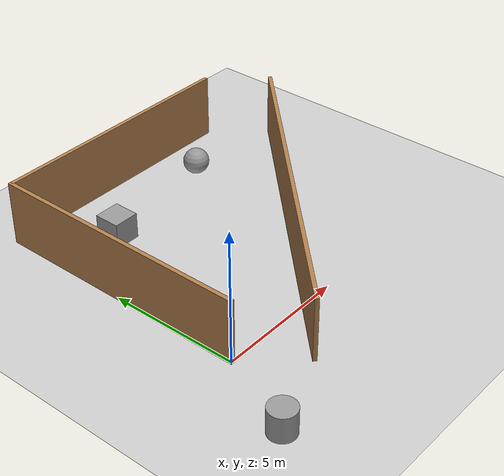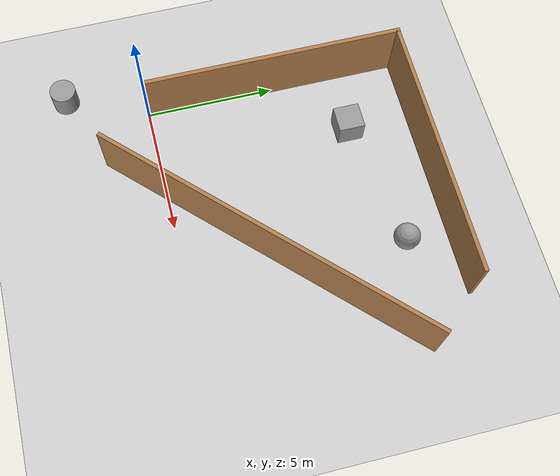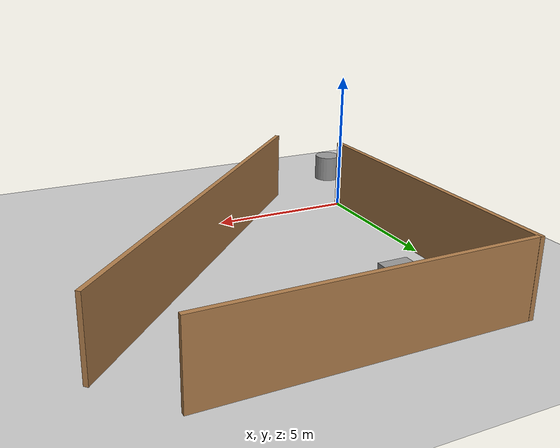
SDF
<sdf version="1.7">
 <world name="default">
  <light name="sun" type="directional">
   <pose>0 0 10 0 -0 0</pose>
   <diffuse>0.8 0.8 0.8 1</diffuse>
   <specular>0.2 0.2 0.2 1</specular>
   <attenuation>
    <range>1000</range>
    <constant>0.9</constant>
    <linear>0.01</linear>
    <quadratic>0.001</quadratic>
   </attenuation>
   <direction>-0.5 0.1 -0.9</direction>
   <spot><inner_angle>0</inner_angle><outer_angle>0</outer_angle><falloff>0</falloff></spot>
  </light>
  <model name="ground_plane">
   <static>1</static>
   <link name="link">
    <collision name="collision">
     <geometry><plane><normal>0 0 1</normal><size>100 100</size></plane></geometry>
     <surface>
      <contact><collide_bitmask>65535</collide_bitmask></contact>
      <friction><ode><mu>100</mu><mu2>50</mu2></ode></friction>
     </surface>
    </collision>
    <visual name="visual">
     <cast_shadows>0</cast_shadows>
     <geometry><plane><normal>0 0 1</normal><size>100 100</size></plane></geometry>
     <material>
      <script><uri>file://media/materials/scripts/gazebo.material</uri><name>Gazebo/Grey</name></script>
     </material>
    </visual>
   </link>
  </model>
  <gravity>0 0 -9.8</gravity>
  <magnetic_field>6e-06 2.3e-05 -4.2e-05</magnetic_field>
  <atmosphere type="adiabatic"/>
  <physics type="ode">
   <max_step_size>0.001</max_step_size>
   <real_time_factor>1</real_time_factor>
   <real_time_update_rate>1000</real_time_update_rate>
  </physics>
  <scene><ambient>0.4 0.4 0.4 1</ambient><background>0.7 0.7 0.7 1</background><shadows>1</shadows></scene>
  <spherical_coordinates>
   <surface_model>EARTH_WGS84</surface_model>
   <latitude_deg>0</latitude_deg>
   <longitude_deg>0</longitude_deg>
   <elevation>0</elevation>
   <heading_deg>0</heading_deg>
  </spherical_coordinates>
  <model name="env_1">
   <pose>5.8826 4.02795 0 0 -0 0</pose>
   <link name="Wall_0">
    <collision name="Wall_0_Collision">
     <geometry><box><size>10.16 0.16 2.5</size></box></geometry>
     <pose>0 0 1.25 0 -0 0</pose>
    </collision>
    <visual name="Wall_0_Visual">
     <pose>0 0 1.25 0 -0 0</pose>
     <geometry><box><size>10.16 0.16 2.5</size></box></geometry>
     <material>
      <script><uri>file://media/materials/scripts/gazebo.material</uri><name>Gazebo/Wood</name></script>
      <ambient>1 1 1 1</ambient>
     </material>
     <meta><layer>0</layer></meta>
    </visual>
    <pose>-5.8826 0.972049 0 0 -0 1.5708</pose>
   </link>
   <link name="Wall_2">
    <collision name="Wall_2_Collision">
     <geometry><box><size>10.05 0.15 2.5</size></box></geometry>
     <pose>0 0 1.25 0 -0 0</pose>
    </collision>
    <visual name="Wall_2_Visual">
     <pose>0 0 1.25 0 -0 0</pose>
     <geometry><box><size>10.05 0.15 2.5</size></box></geometry>
     <material>
      <script><uri>file://media/materials/scripts/gazebo.material</uri><name>Gazebo/Wood</name></script>
      <ambient>1 1 1 1</ambient>
     </material>
     <meta><layer>0</layer></meta>
    </visual>
    <pose>-0.832599 5.97205 0 0 -0 3.14159</pose>
   </link>
   <link name="Wall_4">
    <collision name="Wall_4_Collision">
     <geometry><box><size>14.25 0.15 2.5</size></box></geometry>
     <pose>0 0 1.25 0 -0 0</pose>
    </collision>
    <visual name="Wall_4_Visual">
     <pose>0 0 1.25 0 -0 0</pose>
     <geometry><box><size>14.25 0.15 2.5</size></box></geometry>
     <material>
      <script><uri>file://media/materials/scripts/gazebo.material</uri><name>Gazebo/Wood</name></script>
      <ambient>1 1 1 1</ambient>
     </material>
     <meta><layer>0</layer></meta>
    </visual>
    <pose>0.871429 -0.960879 0 0 -0 -2.35619</pose>
   </link>
   <static>1</static>
  </model>
  <model name="unit_box">
   <pose>2.45981 7.49339 0.499995 -1e-05 -0 -0</pose>
   <link name="link">
    <inertial>
     <mass>1</mass>
     <inertia>
      <ixx>0.166667</ixx>
      <ixy>0</ixy>
      <ixz>0</ixz>
      <iyy>0.166667</iyy>
      <iyz>0</iyz>
      <izz>0.166667</izz>
     </inertia>
    </inertial>
    <collision name="collision"><geometry><box><size>1 1 1</size></box></geometry></collision>
    <visual name="visual">
     <geometry><box><size>1 1 1</size></box></geometry>
     <material>
      <script><name>Gazebo/Grey</name><uri>file://media/materials/scripts/gazebo.material</uri></script>
     </material>
    </visual>
   </link>
  </model>
  <model name="unit_sphere">
   <pose>7.54843 8.30821 0.5 0 -0 0</pose>
   <link name="link">
    <inertial>
     <mass>1</mass>
     <inertia><ixx>0.1</ixx><ixy>0</ixy><ixz>0</ixz><iyy>0.1</iyy><iyz>0</iyz><izz>0.1</izz></inertia>
    </inertial>
    <collision name="collision"><geometry><sphere><radius>0.5</radius></sphere></geometry></collision>
    <visual name="visual">
     <geometry><sphere><radius>0.5</radius></sphere></geometry>
     <material>
      <script><name>Gazebo/Grey</name><uri>file://media/materials/scripts/gazebo.material</uri></script>
     </material>
    </visual>
   </link>
  </model>
  <model name="unit_cylinder">
   <pose>-1.33129 -3.10622 0.499993 -3e-06 -4e-06 -0</pose>
   <link name="link">
    <inertial>
     <mass>1</mass>
     <inertia><ixx>0.145833</ixx><ixy>0</ixy><ixz>0</ixz><iyy>0.145833</iyy><iyz>0</iyz><izz>0.125</izz></inertia>
    </inertial>
    <collision name="collision">
     <geometry><cylinder><radius>0.5</radius><length>1</length></cylinder></geometry>
    </collision>
    <visual name="visual">
     <geometry><cylinder><radius>0.5</radius><length>1</length></cylinder></geometry>
     <material>
      <script><name>Gazebo/Grey</name><uri>file://media/materials/scripts/gazebo.material</uri></script>
     </material>
    </visual>
   </link>
  </model>
 </world>
</sdf>
